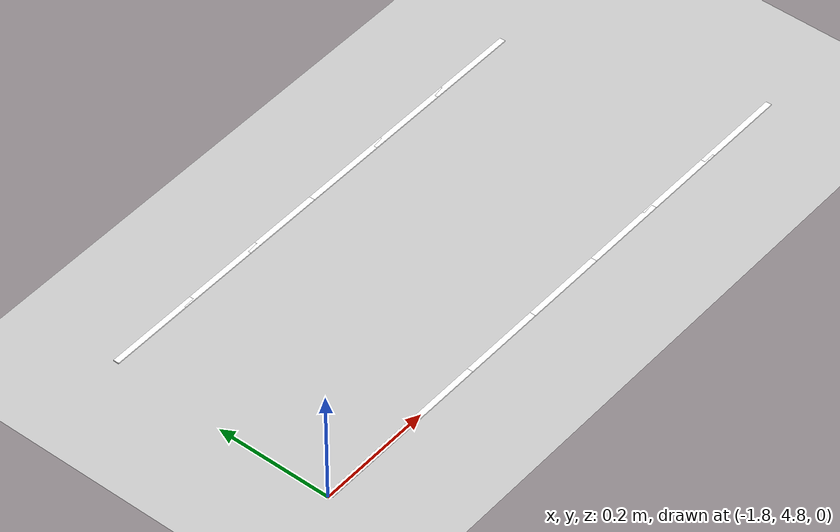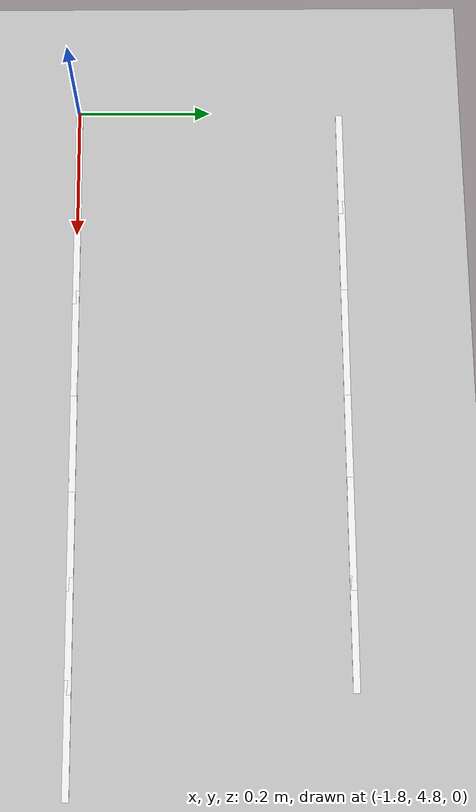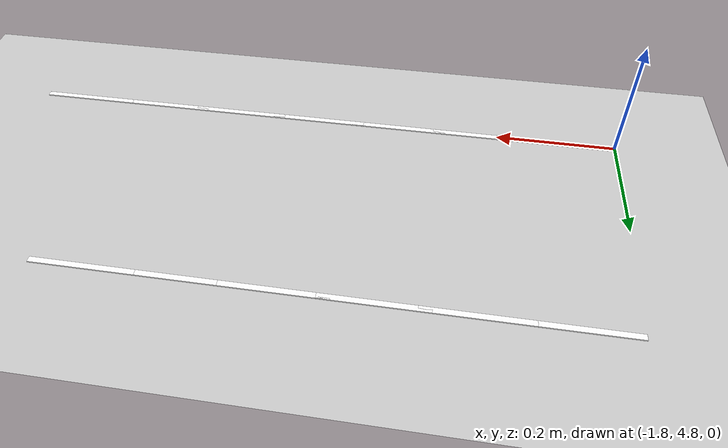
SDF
<sdf version="1.7">
 <world name="default">
  <model name="ground_plane">
   <static>1</static>
   <link name="link">
    <collision name="collision">
     <geometry><plane><normal>0 0 1</normal><size>100 100</size></plane></geometry>
     <surface>
      <contact><collide_bitmask>65535</collide_bitmask></contact>
      <friction><ode><mu>100</mu><mu2>50</mu2></ode></friction>
     </surface>
    </collision>
    <visual name="visual">
     <cast_shadows>0</cast_shadows>
     <geometry><plane><normal>0 0 1</normal><size>100 100</size></plane></geometry>
     <material>
      <script><uri>file://media/materials/scripts/gazebo.material</uri><name>Gazebo/Grey</name></script>
     </material>
    </visual>
   </link>
  </model>
  <model name="lane_line_left_230">
   <static>1</static>
   <link name="link">
    <pose>0 0 -0.004 0 -0 0</pose>
    <visual name="visual">
     <geometry><box><size>0.1629 0.01 0.01</size></box></geometry>
     <material><ambient>1 1 1 1</ambient><diffuse>1 1 1 1</diffuse></material>
    </visual>
    <collision name="collision"><geometry><box><size>0.1629 0.01 0.01</size></box></geometry></collision>
   </link>
   <pose>-0.857143 4.8 0 0 -0 3.14159</pose>
  </model>
  <model name="lane_line_left_231">
   <static>1</static>
   <link name="link">
    <pose>0 0 -0.004 0 -0 0</pose>
    <visual name="visual">
     <geometry><box><size>0.1629 0.01 0.01</size></box></geometry>
     <material><ambient>1 1 1 1</ambient><diffuse>1 1 1 1</diffuse></material>
    </visual>
    <collision name="collision"><geometry><box><size>0.1629 0.01 0.01</size></box></geometry></collision>
   </link>
   <pose>-1 4.8 0 0 -0 3.14159</pose>
  </model>
  <model name="lane_line_right_231">
   <static>1</static>
   <link name="link">
    <pose>0 0 -0.004 0 -0 0</pose>
    <visual name="visual">
     <geometry><box><size>0.1629 0.01 0.01</size></box></geometry>
     <material><ambient>1 1 1 1</ambient><diffuse>1 1 1 1</diffuse></material>
    </visual>
    <collision name="collision"><geometry><box><size>0.1629 0.01 0.01</size></box></geometry></collision>
   </link>
   <pose>-1 5.2 0 0 -0 3.14159</pose>
  </model>
  <model name="lane_line_left_232">
   <static>1</static>
   <link name="link">
    <pose>0 0 -0.004 0 -0 0</pose>
    <visual name="visual">
     <geometry><box><size>0.1629 0.01 0.01</size></box></geometry>
     <material><ambient>1 1 1 1</ambient><diffuse>1 1 1 1</diffuse></material>
    </visual>
    <collision name="collision"><geometry><box><size>0.1629 0.01 0.01</size></box></geometry></collision>
   </link>
   <pose>-1.14286 4.8 0 0 -0 3.14159</pose>
  </model>
  <model name="lane_line_right_232">
   <static>1</static>
   <link name="link">
    <pose>0 0 -0.004 0 -0 0</pose>
    <visual name="visual">
     <geometry><box><size>0.1629 0.01 0.01</size></box></geometry>
     <material><ambient>1 1 1 1</ambient><diffuse>1 1 1 1</diffuse></material>
    </visual>
    <collision name="collision"><geometry><box><size>0.1629 0.01 0.01</size></box></geometry></collision>
   </link>
   <pose>-1.14286 5.2 0 0 -0 3.14159</pose>
  </model>
  <model name="lane_line_left_233">
   <static>1</static>
   <link name="link">
    <pose>0 0 -0.004 0 -0 0</pose>
    <visual name="visual">
     <geometry><box><size>0.1629 0.01 0.01</size></box></geometry>
     <material><ambient>1 1 1 1</ambient><diffuse>1 1 1 1</diffuse></material>
    </visual>
    <collision name="collision"><geometry><box><size>0.1629 0.01 0.01</size></box></geometry></collision>
   </link>
   <pose>-1.28571 4.8 0 0 -0 3.14159</pose>
  </model>
  <model name="lane_line_right_233">
   <static>1</static>
   <link name="link">
    <pose>0 0 -0.004 0 -0 0</pose>
    <visual name="visual">
     <geometry><box><size>0.1629 0.01 0.01</size></box></geometry>
     <material><ambient>1 1 1 1</ambient><diffuse>1 1 1 1</diffuse></material>
    </visual>
    <collision name="collision"><geometry><box><size>0.1629 0.01 0.01</size></box></geometry></collision>
   </link>
   <pose>-1.28571 5.2 0 0 -0 3.14159</pose>
  </model>
  <model name="lane_line_left_234">
   <static>1</static>
   <link name="link">
    <pose>0 0 -0.004 0 -0 0</pose>
    <visual name="visual">
     <geometry><box><size>0.1629 0.01 0.01</size></box></geometry>
     <material><ambient>1 1 1 1</ambient><diffuse>1 1 1 1</diffuse></material>
    </visual>
    <collision name="collision"><geometry><box><size>0.1629 0.01 0.01</size></box></geometry></collision>
   </link>
   <pose>-1.42857 4.8 0 0 -0 3.14159</pose>
  </model>
  <model name="lane_line_right_234">
   <static>1</static>
   <link name="link">
    <pose>0 0 -0.004 0 -0 0</pose>
    <visual name="visual">
     <geometry><box><size>0.1629 0.01 0.01</size></box></geometry>
     <material><ambient>1 1 1 1</ambient><diffuse>1 1 1 1</diffuse></material>
    </visual>
    <collision name="collision"><geometry><box><size>0.1629 0.01 0.01</size></box></geometry></collision>
   </link>
   <pose>-1.42857 5.2 0 0 -0 3.14159</pose>
  </model>
  <model name="lane_line_left_235">
   <static>1</static>
   <link name="link">
    <pose>0 0 -0.004 0 -0 0</pose>
    <visual name="visual">
     <geometry><box><size>0.1629 0.01 0.01</size></box></geometry>
     <material><ambient>1 1 1 1</ambient><diffuse>1 1 1 1</diffuse></material>
    </visual>
    <collision name="collision"><geometry><box><size>0.1629 0.01 0.01</size></box></geometry></collision>
   </link>
   <pose>-1.57143 4.8 0 0 -0 3.14159</pose>
  </model>
  <model name="lane_line_right_235">
   <static>1</static>
   <link name="link">
    <pose>0 0 -0.004 0 -0 0</pose>
    <visual name="visual">
     <geometry><box><size>0.1629 0.01 0.01</size></box></geometry>
     <material><ambient>1 1 1 1</ambient><diffuse>1 1 1 1</diffuse></material>
    </visual>
    <collision name="collision"><geometry><box><size>0.1629 0.01 0.01</size></box></geometry></collision>
   </link>
   <pose>-1.57143 5.2 0 0 -0 3.14159</pose>
  </model>
  <model name="lane_line_left_236">
   <static>1</static>
   <link name="link">
    <pose>0 0 -0.004 0 -0 0</pose>
    <visual name="visual">
     <geometry><box><size>0.1629 0.01 0.01</size></box></geometry>
     <material><ambient>1 1 1 1</ambient><diffuse>1 1 1 1</diffuse></material>
    </visual>
    <collision name="collision"><geometry><box><size>0.1629 0.01 0.01</size></box></geometry></collision>
   </link>
   <pose>-1.71429 4.8 0 0 -0 3.14159</pose>
  </model>
  <model name="lane_line_right_236">
   <static>1</static>
   <link name="link">
    <pose>0 0 -0.004 0 -0 0</pose>
    <visual name="visual">
     <geometry><box><size>0.1629 0.01 0.01</size></box></geometry>
     <material><ambient>1 1 1 1</ambient><diffuse>1 1 1 1</diffuse></material>
    </visual>
    <collision name="collision"><geometry><box><size>0.1629 0.01 0.01</size></box></geometry></collision>
   </link>
   <pose>-1.71429 5.2 0 0 -0 3.14159</pose>
  </model>
 </world>
</sdf>
